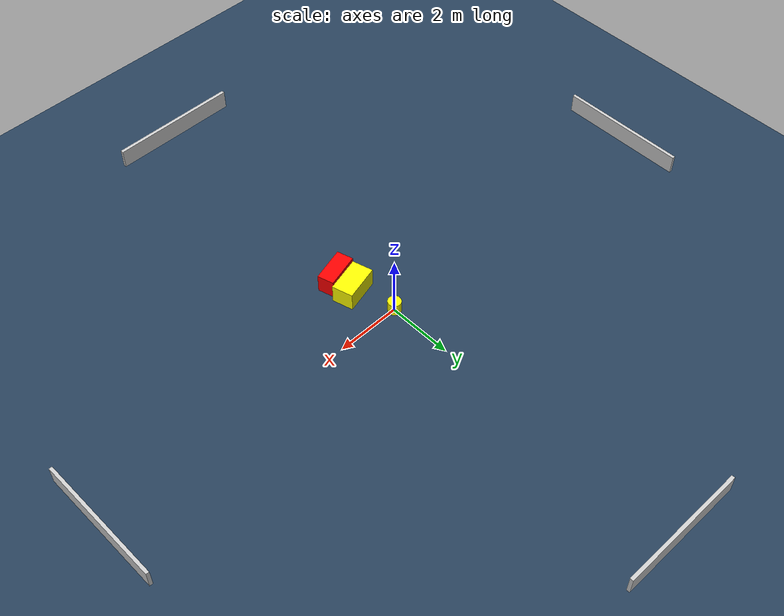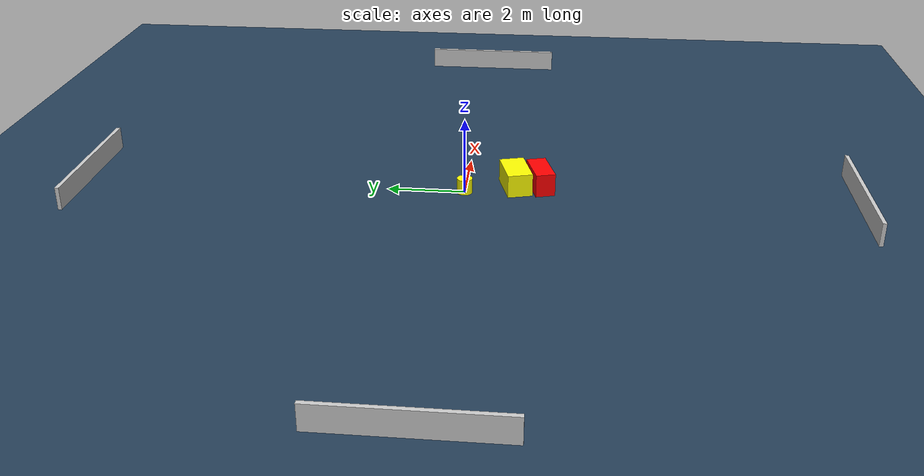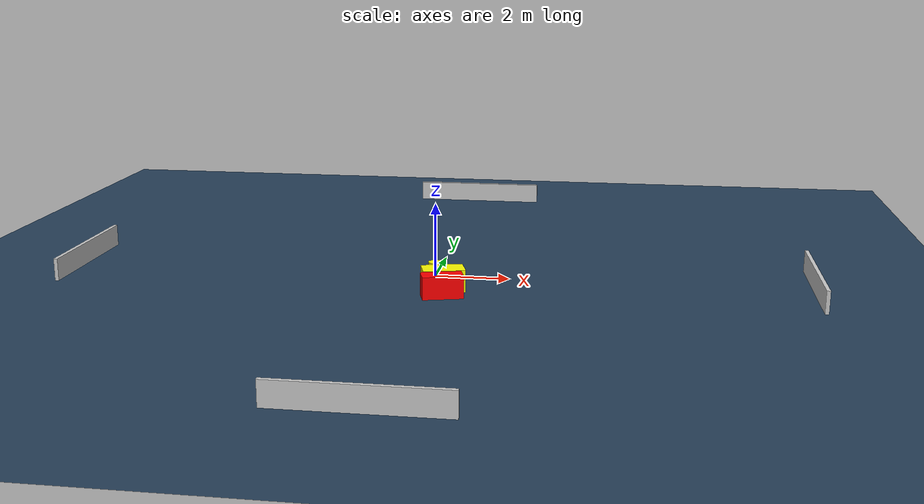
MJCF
<?xml version="1.0" ?>
<mujoco model="generated_environment">
  <option timestep="0.01" integrator="RK4" cone="elliptic"/>
  <default>
    <geom density="1"/>
  </default>
  <asset>
    <texture builtin="gradient" height="3072" name="skybox" rgb1="0.3 0.5 0.7" rgb2="0 0 0" type="skybox" width="512"/>
    <texture builtin="checker" height="300" name="groundplane" rgb1="0.2 0.3 0.4" rgb2="0.1 0.2 0.3" type="2d" width="300"/>
    <material name="groundplane" reflectance="0.2" texrepeat="5 5" texture="groundplane"/>
  </asset>
  <worldbody>
    <light dir="0 0 -1" directional="true" pos="0 0 1.5"/>
    <geom condim="3" friction="0.5 0.005 0.001" material="groundplane" name="floor" pos="0 0 0" size="0 0 0.05" type="plane"/>
    <body name="walls">
      <geom name="wall_1" condim="4" pos="-10.0 0.0 0.3" rgba="0.800000011920929 0.800000011920929 0.800000011920929 1.0" size="0.05 2.0 0.3" type="box"/>
      <geom name="wall_2" condim="4" pos="10.0 0.0 0.3" rgba="0.800000011920929 0.800000011920929 0.800000011920929 1.0" size="0.05 2.0 0.3" type="box"/>
      <geom name="wall_3" condim="4" pos="0.0 -10.0 0.3" rgba="0.800000011920929 0.800000011920929 0.800000011920929 1.0" size="2.0 0.05 0.3" type="box"/>
      <geom name="wall_4" condim="4" pos="0.0 10.0 0.3" rgba="0.800000011920929 0.800000011920929 0.800000011920929 1.0" size="2.0 0.05 0.3" type="box"/>
    </body>
    <body name="robot">
      <joint name="joint_x" type="slide" pos="0 0 0" axis="1 0 0"/>
      <joint name="joint_y" type="slide" pos="0 0 0" axis="0 1 0"/>
      <geom name="robot" type="cylinder" pos="0.0 0.0 0.2" size="0.2 0.2 0.0" mass="5.0" friction="1.0 0.005 0.0001" condim="4" rgba="1.0 1.0 0.0 1.0"/>
    </body>
    <body name="obstacle_1_movable">
      <geom name="obstacle_1_movable" condim="4" pos="0.39070064375559527 -1.2964593629285537 0.3" euler="0 0 195.3969624177069" friction="0.0 0.005 0.001" rgba="1.0 1.0 0.0 1.0" size="0.5536082210400052 0.3244514422220075 0.3" type="box" mass="0.1"/>
      <joint type="free"/>
    </body>
    <body name="obstacle_2_static">
      <geom name="obstacle_2_static" condim="4" pos="0.4586423312270372 -1.9387726500560463 0.3" euler="0 0 16.056748197564815" friction="0.0 0.005 0.001" rgba="1.0 0.0 0.0 1.0" size="0.5366106043054026 0.25414997375966336 0.3" type="box"/>
    </body>
  </worldbody>
  <actuator>
    <motor name="actuator_x" joint="joint_x" gear="1" ctrlrange="-1 1"/>
    <motor name="actuator_y" joint="joint_y" gear="1" ctrlrange="-1 1"/>
  </actuator>
</mujoco>
